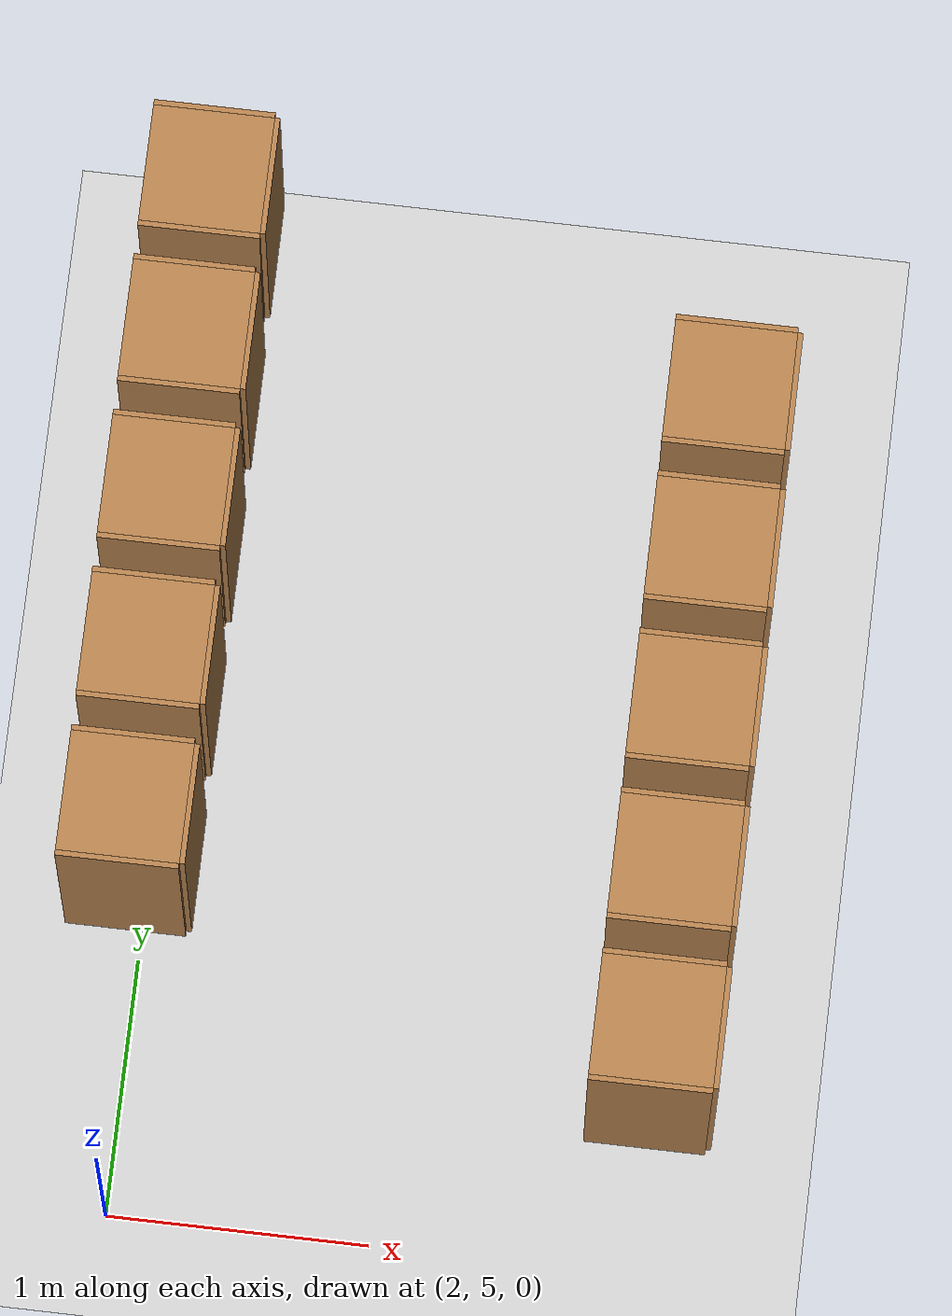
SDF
<sdf version="1.7">
 <world name="default">
  <model name="ground_plane">
   <static>1</static>
   <link name="link">
    <collision name="collision">
     <geometry><plane><normal>0 0 1</normal><size>100 100</size></plane></geometry>
     <surface><friction><ode><mu>100</mu><mu2>50</mu2></ode></friction></surface>
    </collision>
    <visual name="visual">
     <cast_shadows>0</cast_shadows>
     <geometry><plane><normal>0 0 1</normal><size>100 100</size></plane></geometry>
     <material>
      <script><uri>file://media/materials/scripts/gazebo.material</uri><name>Gazebo/Grey</name></script>
     </material>
    </visual>
   </link>
  </model>
  <model name="cabinet_1">
   <static>1</static>
   <link name="cabinet_bottom_plate">
    <inertial>
     <pose>0 0 -1 0 -0 0</pose>
     <inertia><ixx>2.05</ixx><ixy>0</ixy><ixz>0</ixz><iyy>2.05</iyy><iyz>0</iyz><izz>2.05</izz></inertia>
     <mass>25</mass>
    </inertial>
    <collision name="cabinet_bottom_plate_geom">
     <pose>0 0 0.01 0 -0 0</pose>
     <geometry><box><size>0.45 0.45 0.02</size></box></geometry>
    </collision>
    <visual name="cabinet_bottom_plate_geom_visual">
     <pose>0 0 0.01 0 -0 0</pose>
     <geometry><box><size>0.45 0.45 0.02</size></box></geometry>
     <material>
      <script><uri>file://media/materials/scripts/gazebo.material</uri><name>Gazebo/Wood</name></script>
     </material>
    </visual>
    <collision name="cabinet_bottom_plate_geom_cabinet_back_plate">
     <pose>0.235 0 0.51 0 -0 0</pose>
     <geometry><box><size>0.02 0.45 1.02</size></box></geometry>
    </collision>
    <visual name="cabinet_bottom_plate_geom_cabinet_back_plate_visual">
     <pose>0.235 0 0.51 0 -0 0</pose>
     <geometry><box><size>0.02 0.45 1.02</size></box></geometry>
     <material>
      <script><uri>file://media/materials/scripts/gazebo.material</uri><name>Gazebo/Wood</name></script>
     </material>
    </visual>
    <collision name="cabinet_bottom_plate_geom_cabinet_left_plate">
     <pose>0 0.235 0.51 0 -0 0</pose>
     <geometry><box><size>0.45 0.02 1.02</size></box></geometry>
    </collision>
    <visual name="cabinet_bottom_plate_geom_cabinet_left_plate_visual">
     <pose>0 0.235 0.51 0 -0 0</pose>
     <geometry><box><size>0.45 0.02 1.02</size></box></geometry>
     <material>
      <script><uri>file://media/materials/scripts/gazebo.material</uri><name>Gazebo/Wood</name></script>
     </material>
    </visual>
    <collision name="cabinet_bottom_plate_geom_cabinet_middle_plate">
     <pose>0 0 0.51 0 -0 0</pose>
     <geometry><box><size>0.45 0.45 0.02</size></box></geometry>
    </collision>
    <visual name="cabinet_bottom_plate_geom_cabinet_middle_plate_visual">
     <pose>0 0 0.51 0 -0 0</pose>
     <geometry><box><size>0.45 0.45 0.02</size></box></geometry>
     <material>
      <script><uri>file://media/materials/scripts/gazebo.material</uri><name>Gazebo/Wood</name></script>
     </material>
    </visual>
    <collision name="cabinet_bottom_plate_geom_cabinet_right_plate">
     <pose>0 -0.235 0.51 0 -0 0</pose>
     <geometry><box><size>0.45 0.02 1.02</size></box></geometry>
    </collision>
    <visual name="cabinet_bottom_plate_geom_cabinet_right_plate_visual">
     <pose>0 -0.235 0.51 0 -0 0</pose>
     <geometry><box><size>0.45 0.02 1.02</size></box></geometry>
     <material>
      <script><uri>file://media/materials/scripts/gazebo.material</uri><name>Gazebo/Wood</name></script>
     </material>
    </visual>
    <collision name="cabinet_bottom_plate_geom_cabinet_top_plate">
     <pose>0 0 1.01 0 -0 0</pose>
     <geometry><box><size>0.45 0.45 0.02</size></box></geometry>
    </collision>
    <visual name="cabinet_bottom_plate_geom_cabinet_top_plate_visual">
     <pose>0 0 1.01 0 -0 0</pose>
     <geometry><box><size>0.45 0.45 0.02</size></box></geometry>
     <material>
      <script><uri>file://media/materials/scripts/gazebo.material</uri><name>Gazebo/Wood</name></script>
     </material>
    </visual>
   </link>
   <pose>4 6.1 0 0 -0 0</pose>
  </model>
  <model name="cabinet_2">
   <static>1</static>
   <link name="cabinet_bottom_plate">
    <inertial>
     <pose>0 0 -1 0 -0 0</pose>
     <inertia><ixx>2.05</ixx><ixy>0</ixy><ixz>0</ixz><iyy>2.05</iyy><iyz>0</iyz><izz>2.05</izz></inertia>
     <mass>25</mass>
    </inertial>
    <collision name="cabinet_bottom_plate_geom">
     <pose>0 0 0.01 0 -0 0</pose>
     <geometry><box><size>0.45 0.45 0.02</size></box></geometry>
    </collision>
    <visual name="cabinet_bottom_plate_geom_visual">
     <pose>0 0 0.01 0 -0 0</pose>
     <geometry><box><size>0.45 0.45 0.02</size></box></geometry>
     <material>
      <script><uri>file://media/materials/scripts/gazebo.material</uri><name>Gazebo/Wood</name></script>
     </material>
    </visual>
    <collision name="cabinet_bottom_plate_geom_cabinet_back_plate">
     <pose>0.235 0 0.51 0 -0 0</pose>
     <geometry><box><size>0.02 0.45 1.02</size></box></geometry>
    </collision>
    <visual name="cabinet_bottom_plate_geom_cabinet_back_plate_visual">
     <pose>0.235 0 0.51 0 -0 0</pose>
     <geometry><box><size>0.02 0.45 1.02</size></box></geometry>
     <material>
      <script><uri>file://media/materials/scripts/gazebo.material</uri><name>Gazebo/Wood</name></script>
     </material>
    </visual>
    <collision name="cabinet_bottom_plate_geom_cabinet_left_plate">
     <pose>0 0.235 0.51 0 -0 0</pose>
     <geometry><box><size>0.45 0.02 1.02</size></box></geometry>
    </collision>
    <visual name="cabinet_bottom_plate_geom_cabinet_left_plate_visual">
     <pose>0 0.235 0.51 0 -0 0</pose>
     <geometry><box><size>0.45 0.02 1.02</size></box></geometry>
     <material>
      <script><uri>file://media/materials/scripts/gazebo.material</uri><name>Gazebo/Wood</name></script>
     </material>
    </visual>
    <collision name="cabinet_bottom_plate_geom_cabinet_middle_plate">
     <pose>0 0 0.51 0 -0 0</pose>
     <geometry><box><size>0.45 0.45 0.02</size></box></geometry>
    </collision>
    <visual name="cabinet_bottom_plate_geom_cabinet_middle_plate_visual">
     <pose>0 0 0.51 0 -0 0</pose>
     <geometry><box><size>0.45 0.45 0.02</size></box></geometry>
     <material>
      <script><uri>file://media/materials/scripts/gazebo.material</uri><name>Gazebo/Wood</name></script>
     </material>
    </visual>
    <collision name="cabinet_bottom_plate_geom_cabinet_right_plate">
     <pose>0 -0.235 0.51 0 -0 0</pose>
     <geometry><box><size>0.45 0.02 1.02</size></box></geometry>
    </collision>
    <visual name="cabinet_bottom_plate_geom_cabinet_right_plate_visual">
     <pose>0 -0.235 0.51 0 -0 0</pose>
     <geometry><box><size>0.45 0.02 1.02</size></box></geometry>
     <material>
      <script><uri>file://media/materials/scripts/gazebo.material</uri><name>Gazebo/Wood</name></script>
     </material>
    </visual>
    <collision name="cabinet_bottom_plate_geom_cabinet_top_plate">
     <pose>0 0 1.01 0 -0 0</pose>
     <geometry><box><size>0.45 0.45 0.02</size></box></geometry>
    </collision>
    <visual name="cabinet_bottom_plate_geom_cabinet_top_plate_visual">
     <pose>0 0 1.01 0 -0 0</pose>
     <geometry><box><size>0.45 0.45 0.02</size></box></geometry>
     <material>
      <script><uri>file://media/materials/scripts/gazebo.material</uri><name>Gazebo/Wood</name></script>
     </material>
    </visual>
   </link>
   <pose>4 6.7 0 0 -0 0</pose>
  </model>
  <model name="cabinet_3">
   <static>1</static>
   <link name="cabinet_bottom_plate">
    <inertial>
     <pose>0 0 -1 0 -0 0</pose>
     <inertia><ixx>2.05</ixx><ixy>0</ixy><ixz>0</ixz><iyy>2.05</iyy><iyz>0</iyz><izz>2.05</izz></inertia>
     <mass>25</mass>
    </inertial>
    <collision name="cabinet_bottom_plate_geom">
     <pose>0 0 0.01 0 -0 0</pose>
     <geometry><box><size>0.45 0.45 0.02</size></box></geometry>
    </collision>
    <visual name="cabinet_bottom_plate_geom_visual">
     <pose>0 0 0.01 0 -0 0</pose>
     <geometry><box><size>0.45 0.45 0.02</size></box></geometry>
     <material>
      <script><uri>file://media/materials/scripts/gazebo.material</uri><name>Gazebo/Wood</name></script>
     </material>
    </visual>
    <collision name="cabinet_bottom_plate_geom_cabinet_back_plate">
     <pose>0.235 0 0.51 0 -0 0</pose>
     <geometry><box><size>0.02 0.45 1.02</size></box></geometry>
    </collision>
    <visual name="cabinet_bottom_plate_geom_cabinet_back_plate_visual">
     <pose>0.235 0 0.51 0 -0 0</pose>
     <geometry><box><size>0.02 0.45 1.02</size></box></geometry>
     <material>
      <script><uri>file://media/materials/scripts/gazebo.material</uri><name>Gazebo/Wood</name></script>
     </material>
    </visual>
    <collision name="cabinet_bottom_plate_geom_cabinet_left_plate">
     <pose>0 0.235 0.51 0 -0 0</pose>
     <geometry><box><size>0.45 0.02 1.02</size></box></geometry>
    </collision>
    <visual name="cabinet_bottom_plate_geom_cabinet_left_plate_visual">
     <pose>0 0.235 0.51 0 -0 0</pose>
     <geometry><box><size>0.45 0.02 1.02</size></box></geometry>
     <material>
      <script><uri>file://media/materials/scripts/gazebo.material</uri><name>Gazebo/Wood</name></script>
     </material>
    </visual>
    <collision name="cabinet_bottom_plate_geom_cabinet_middle_plate">
     <pose>0 0 0.51 0 -0 0</pose>
     <geometry><box><size>0.45 0.45 0.02</size></box></geometry>
    </collision>
    <visual name="cabinet_bottom_plate_geom_cabinet_middle_plate_visual">
     <pose>0 0 0.51 0 -0 0</pose>
     <geometry><box><size>0.45 0.45 0.02</size></box></geometry>
     <material>
      <script><uri>file://media/materials/scripts/gazebo.material</uri><name>Gazebo/Wood</name></script>
     </material>
    </visual>
    <collision name="cabinet_bottom_plate_geom_cabinet_right_plate">
     <pose>0 -0.235 0.51 0 -0 0</pose>
     <geometry><box><size>0.45 0.02 1.02</size></box></geometry>
    </collision>
    <visual name="cabinet_bottom_plate_geom_cabinet_right_plate_visual">
     <pose>0 -0.235 0.51 0 -0 0</pose>
     <geometry><box><size>0.45 0.02 1.02</size></box></geometry>
     <material>
      <script><uri>file://media/materials/scripts/gazebo.material</uri><name>Gazebo/Wood</name></script>
     </material>
    </visual>
    <collision name="cabinet_bottom_plate_geom_cabinet_top_plate">
     <pose>0 0 1.01 0 -0 0</pose>
     <geometry><box><size>0.45 0.45 0.02</size></box></geometry>
    </collision>
    <visual name="cabinet_bottom_plate_geom_cabinet_top_plate_visual">
     <pose>0 0 1.01 0 -0 0</pose>
     <geometry><box><size>0.45 0.45 0.02</size></box></geometry>
     <material>
      <script><uri>file://media/materials/scripts/gazebo.material</uri><name>Gazebo/Wood</name></script>
     </material>
    </visual>
   </link>
   <pose>4 7.3 0 0 -0 0</pose>
  </model>
  <model name="cabinet_16">
   <static>1</static>
   <link name="cabinet_bottom_plate">
    <inertial>
     <pose>0 0 -1 0 -0 0</pose>
     <inertia><ixx>2.05</ixx><ixy>0</ixy><ixz>0</ixz><iyy>2.05</iyy><iyz>0</iyz><izz>2.05</izz></inertia>
     <mass>25</mass>
    </inertial>
    <collision name="cabinet_bottom_plate_geom">
     <pose>0 0 0.01 0 -0 0</pose>
     <geometry><box><size>0.45 0.45 0.02</size></box></geometry>
    </collision>
    <visual name="cabinet_bottom_plate_geom_visual">
     <pose>0 0 0.01 0 -0 0</pose>
     <geometry><box><size>0.45 0.45 0.02</size></box></geometry>
     <material>
      <script><uri>file://media/materials/scripts/gazebo.material</uri><name>Gazebo/Wood</name></script>
     </material>
    </visual>
    <collision name="cabinet_bottom_plate_geom_cabinet_back_plate">
     <pose>0.235 0 0.51 0 -0 0</pose>
     <geometry><box><size>0.02 0.45 1.02</size></box></geometry>
    </collision>
    <visual name="cabinet_bottom_plate_geom_cabinet_back_plate_visual">
     <pose>0.235 0 0.51 0 -0 0</pose>
     <geometry><box><size>0.02 0.45 1.02</size></box></geometry>
     <material>
      <script><uri>file://media/materials/scripts/gazebo.material</uri><name>Gazebo/Wood</name></script>
     </material>
    </visual>
    <collision name="cabinet_bottom_plate_geom_cabinet_left_plate">
     <pose>0 0.235 0.51 0 -0 0</pose>
     <geometry><box><size>0.45 0.02 1.02</size></box></geometry>
    </collision>
    <visual name="cabinet_bottom_plate_geom_cabinet_left_plate_visual">
     <pose>0 0.235 0.51 0 -0 0</pose>
     <geometry><box><size>0.45 0.02 1.02</size></box></geometry>
     <material>
      <script><uri>file://media/materials/scripts/gazebo.material</uri><name>Gazebo/Wood</name></script>
     </material>
    </visual>
    <collision name="cabinet_bottom_plate_geom_cabinet_middle_plate">
     <pose>0 0 0.51 0 -0 0</pose>
     <geometry><box><size>0.45 0.45 0.02</size></box></geometry>
    </collision>
    <visual name="cabinet_bottom_plate_geom_cabinet_middle_plate_visual">
     <pose>0 0 0.51 0 -0 0</pose>
     <geometry><box><size>0.45 0.45 0.02</size></box></geometry>
     <material>
      <script><uri>file://media/materials/scripts/gazebo.material</uri><name>Gazebo/Wood</name></script>
     </material>
    </visual>
    <collision name="cabinet_bottom_plate_geom_cabinet_right_plate">
     <pose>0 -0.235 0.51 0 -0 0</pose>
     <geometry><box><size>0.45 0.02 1.02</size></box></geometry>
    </collision>
    <visual name="cabinet_bottom_plate_geom_cabinet_right_plate_visual">
     <pose>0 -0.235 0.51 0 -0 0</pose>
     <geometry><box><size>0.45 0.02 1.02</size></box></geometry>
     <material>
      <script><uri>file://media/materials/scripts/gazebo.material</uri><name>Gazebo/Wood</name></script>
     </material>
    </visual>
    <collision name="cabinet_bottom_plate_geom_cabinet_top_plate">
     <pose>0 0 1.01 0 -0 0</pose>
     <geometry><box><size>0.45 0.45 0.02</size></box></geometry>
    </collision>
    <visual name="cabinet_bottom_plate_geom_cabinet_top_plate_visual">
     <pose>0 0 1.01 0 -0 0</pose>
     <geometry><box><size>0.45 0.45 0.02</size></box></geometry>
     <material>
      <script><uri>file://media/materials/scripts/gazebo.material</uri><name>Gazebo/Wood</name></script>
     </material>
    </visual>
   </link>
   <pose>4 7.9 0 0 -0 0</pose>
  </model>
  <model name="cabinet_69">
   <static>1</static>
   <link name="cabinet_bottom_plate">
    <inertial>
     <pose>0 0 -1 0 -0 0</pose>
     <inertia><ixx>2.05</ixx><ixy>0</ixy><ixz>0</ixz><iyy>2.05</iyy><iyz>0</iyz><izz>2.05</izz></inertia>
     <mass>25</mass>
    </inertial>
    <collision name="cabinet_bottom_plate_geom">
     <pose>0 0 0.01 0 -0 0</pose>
     <geometry><box><size>0.45 0.45 0.02</size></box></geometry>
    </collision>
    <visual name="cabinet_bottom_plate_geom_visual">
     <pose>0 0 0.01 0 -0 0</pose>
     <geometry><box><size>0.45 0.45 0.02</size></box></geometry>
     <material>
      <script><uri>file://media/materials/scripts/gazebo.material</uri><name>Gazebo/Wood</name></script>
     </material>
    </visual>
    <collision name="cabinet_bottom_plate_geom_cabinet_back_plate">
     <pose>0.235 0 0.51 0 -0 0</pose>
     <geometry><box><size>0.02 0.45 1.02</size></box></geometry>
    </collision>
    <visual name="cabinet_bottom_plate_geom_cabinet_back_plate_visual">
     <pose>0.235 0 0.51 0 -0 0</pose>
     <geometry><box><size>0.02 0.45 1.02</size></box></geometry>
     <material>
      <script><uri>file://media/materials/scripts/gazebo.material</uri><name>Gazebo/Wood</name></script>
     </material>
    </visual>
    <collision name="cabinet_bottom_plate_geom_cabinet_left_plate">
     <pose>0 0.235 0.51 0 -0 0</pose>
     <geometry><box><size>0.45 0.02 1.02</size></box></geometry>
    </collision>
    <visual name="cabinet_bottom_plate_geom_cabinet_left_plate_visual">
     <pose>0 0.235 0.51 0 -0 0</pose>
     <geometry><box><size>0.45 0.02 1.02</size></box></geometry>
     <material>
      <script><uri>file://media/materials/scripts/gazebo.material</uri><name>Gazebo/Wood</name></script>
     </material>
    </visual>
    <collision name="cabinet_bottom_plate_geom_cabinet_middle_plate">
     <pose>0 0 0.51 0 -0 0</pose>
     <geometry><box><size>0.45 0.45 0.02</size></box></geometry>
    </collision>
    <visual name="cabinet_bottom_plate_geom_cabinet_middle_plate_visual">
     <pose>0 0 0.51 0 -0 0</pose>
     <geometry><box><size>0.45 0.45 0.02</size></box></geometry>
     <material>
      <script><uri>file://media/materials/scripts/gazebo.material</uri><name>Gazebo/Wood</name></script>
     </material>
    </visual>
    <collision name="cabinet_bottom_plate_geom_cabinet_right_plate">
     <pose>0 -0.235 0.51 0 -0 0</pose>
     <geometry><box><size>0.45 0.02 1.02</size></box></geometry>
    </collision>
    <visual name="cabinet_bottom_plate_geom_cabinet_right_plate_visual">
     <pose>0 -0.235 0.51 0 -0 0</pose>
     <geometry><box><size>0.45 0.02 1.02</size></box></geometry>
     <material>
      <script><uri>file://media/materials/scripts/gazebo.material</uri><name>Gazebo/Wood</name></script>
     </material>
    </visual>
    <collision name="cabinet_bottom_plate_geom_cabinet_top_plate">
     <pose>0 0 1.01 0 -0 0</pose>
     <geometry><box><size>0.45 0.45 0.02</size></box></geometry>
    </collision>
    <visual name="cabinet_bottom_plate_geom_cabinet_top_plate_visual">
     <pose>0 0 1.01 0 -0 0</pose>
     <geometry><box><size>0.45 0.45 0.02</size></box></geometry>
     <material>
      <script><uri>file://media/materials/scripts/gazebo.material</uri><name>Gazebo/Wood</name></script>
     </material>
    </visual>
   </link>
   <pose>4 6.1 1.1 0 -0 0</pose>
  </model>
  <model name="cabinet_85">
   <static>1</static>
   <link name="cabinet_bottom_plate">
    <inertial>
     <pose>0 0 -1 0 -0 0</pose>
     <inertia><ixx>2.05</ixx><ixy>0</ixy><ixz>0</ixz><iyy>2.05</iyy><iyz>0</iyz><izz>2.05</izz></inertia>
     <mass>25</mass>
    </inertial>
    <collision name="cabinet_bottom_plate_geom">
     <pose>0 0 0.01 0 -0 0</pose>
     <geometry><box><size>0.45 0.45 0.02</size></box></geometry>
    </collision>
    <visual name="cabinet_bottom_plate_geom_visual">
     <pose>0 0 0.01 0 -0 0</pose>
     <geometry><box><size>0.45 0.45 0.02</size></box></geometry>
     <material>
      <script><uri>file://media/materials/scripts/gazebo.material</uri><name>Gazebo/Wood</name></script>
     </material>
    </visual>
    <collision name="cabinet_bottom_plate_geom_cabinet_back_plate">
     <pose>0.235 0 0.51 0 -0 0</pose>
     <geometry><box><size>0.02 0.45 1.02</size></box></geometry>
    </collision>
    <visual name="cabinet_bottom_plate_geom_cabinet_back_plate_visual">
     <pose>0.235 0 0.51 0 -0 0</pose>
     <geometry><box><size>0.02 0.45 1.02</size></box></geometry>
     <material>
      <script><uri>file://media/materials/scripts/gazebo.material</uri><name>Gazebo/Wood</name></script>
     </material>
    </visual>
    <collision name="cabinet_bottom_plate_geom_cabinet_left_plate">
     <pose>0 0.235 0.51 0 -0 0</pose>
     <geometry><box><size>0.45 0.02 1.02</size></box></geometry>
    </collision>
    <visual name="cabinet_bottom_plate_geom_cabinet_left_plate_visual">
     <pose>0 0.235 0.51 0 -0 0</pose>
     <geometry><box><size>0.45 0.02 1.02</size></box></geometry>
     <material>
      <script><uri>file://media/materials/scripts/gazebo.material</uri><name>Gazebo/Wood</name></script>
     </material>
    </visual>
    <collision name="cabinet_bottom_plate_geom_cabinet_middle_plate">
     <pose>0 0 0.51 0 -0 0</pose>
     <geometry><box><size>0.45 0.45 0.02</size></box></geometry>
    </collision>
    <visual name="cabinet_bottom_plate_geom_cabinet_middle_plate_visual">
     <pose>0 0 0.51 0 -0 0</pose>
     <geometry><box><size>0.45 0.45 0.02</size></box></geometry>
     <material>
      <script><uri>file://media/materials/scripts/gazebo.material</uri><name>Gazebo/Wood</name></script>
     </material>
    </visual>
    <collision name="cabinet_bottom_plate_geom_cabinet_right_plate">
     <pose>0 -0.235 0.51 0 -0 0</pose>
     <geometry><box><size>0.45 0.02 1.02</size></box></geometry>
    </collision>
    <visual name="cabinet_bottom_plate_geom_cabinet_right_plate_visual">
     <pose>0 -0.235 0.51 0 -0 0</pose>
     <geometry><box><size>0.45 0.02 1.02</size></box></geometry>
     <material>
      <script><uri>file://media/materials/scripts/gazebo.material</uri><name>Gazebo/Wood</name></script>
     </material>
    </visual>
    <collision name="cabinet_bottom_plate_geom_cabinet_top_plate">
     <pose>0 0 1.01 0 -0 0</pose>
     <geometry><box><size>0.45 0.45 0.02</size></box></geometry>
    </collision>
    <visual name="cabinet_bottom_plate_geom_cabinet_top_plate_visual">
     <pose>0 0 1.01 0 -0 0</pose>
     <geometry><box><size>0.45 0.45 0.02</size></box></geometry>
     <material>
      <script><uri>file://media/materials/scripts/gazebo.material</uri><name>Gazebo/Wood</name></script>
     </material>
    </visual>
   </link>
   <pose>4 5.5 1.1 0 -0 0</pose>
  </model>
  <model name="cabinet_87">
   <static>1</static>
   <link name="cabinet_bottom_plate">
    <inertial>
     <pose>0 0 -1 0 -0 0</pose>
     <inertia><ixx>2.05</ixx><ixy>0</ixy><ixz>0</ixz><iyy>2.05</iyy><iyz>0</iyz><izz>2.05</izz></inertia>
     <mass>25</mass>
    </inertial>
    <collision name="cabinet_bottom_plate_geom">
     <pose>0 0 0.01 0 -0 0</pose>
     <geometry><box><size>0.45 0.45 0.02</size></box></geometry>
    </collision>
    <visual name="cabinet_bottom_plate_geom_visual">
     <pose>0 0 0.01 0 -0 0</pose>
     <geometry><box><size>0.45 0.45 0.02</size></box></geometry>
     <material>
      <script><uri>file://media/materials/scripts/gazebo.material</uri><name>Gazebo/Wood</name></script>
     </material>
    </visual>
    <collision name="cabinet_bottom_plate_geom_cabinet_back_plate">
     <pose>0.235 0 0.51 0 -0 0</pose>
     <geometry><box><size>0.02 0.45 1.02</size></box></geometry>
    </collision>
    <visual name="cabinet_bottom_plate_geom_cabinet_back_plate_visual">
     <pose>0.235 0 0.51 0 -0 0</pose>
     <geometry><box><size>0.02 0.45 1.02</size></box></geometry>
     <material>
      <script><uri>file://media/materials/scripts/gazebo.material</uri><name>Gazebo/Wood</name></script>
     </material>
    </visual>
    <collision name="cabinet_bottom_plate_geom_cabinet_left_plate">
     <pose>0 0.235 0.51 0 -0 0</pose>
     <geometry><box><size>0.45 0.02 1.02</size></box></geometry>
    </collision>
    <visual name="cabinet_bottom_plate_geom_cabinet_left_plate_visual">
     <pose>0 0.235 0.51 0 -0 0</pose>
     <geometry><box><size>0.45 0.02 1.02</size></box></geometry>
     <material>
      <script><uri>file://media/materials/scripts/gazebo.material</uri><name>Gazebo/Wood</name></script>
     </material>
    </visual>
    <collision name="cabinet_bottom_plate_geom_cabinet_middle_plate">
     <pose>0 0 0.51 0 -0 0</pose>
     <geometry><box><size>0.45 0.45 0.02</size></box></geometry>
    </collision>
    <visual name="cabinet_bottom_plate_geom_cabinet_middle_plate_visual">
     <pose>0 0 0.51 0 -0 0</pose>
     <geometry><box><size>0.45 0.45 0.02</size></box></geometry>
     <material>
      <script><uri>file://media/materials/scripts/gazebo.material</uri><name>Gazebo/Wood</name></script>
     </material>
    </visual>
    <collision name="cabinet_bottom_plate_geom_cabinet_right_plate">
     <pose>0 -0.235 0.51 0 -0 0</pose>
     <geometry><box><size>0.45 0.02 1.02</size></box></geometry>
    </collision>
    <visual name="cabinet_bottom_plate_geom_cabinet_right_plate_visual">
     <pose>0 -0.235 0.51 0 -0 0</pose>
     <geometry><box><size>0.45 0.02 1.02</size></box></geometry>
     <material>
      <script><uri>file://media/materials/scripts/gazebo.material</uri><name>Gazebo/Wood</name></script>
     </material>
    </visual>
    <collision name="cabinet_bottom_plate_geom_cabinet_top_plate">
     <pose>0 0 1.01 0 -0 0</pose>
     <geometry><box><size>0.45 0.45 0.02</size></box></geometry>
    </collision>
    <visual name="cabinet_bottom_plate_geom_cabinet_top_plate_visual">
     <pose>0 0 1.01 0 -0 0</pose>
     <geometry><box><size>0.45 0.45 0.02</size></box></geometry>
     <material>
      <script><uri>file://media/materials/scripts/gazebo.material</uri><name>Gazebo/Wood</name></script>
     </material>
    </visual>
   </link>
   <pose>4 6.7 1.1 0 -0 0</pose>
  </model>
  <model name="cabinet_88">
   <static>1</static>
   <link name="cabinet_bottom_plate">
    <inertial>
     <pose>0 0 -1 0 -0 0</pose>
     <inertia><ixx>2.05</ixx><ixy>0</ixy><ixz>0</ixz><iyy>2.05</iyy><iyz>0</iyz><izz>2.05</izz></inertia>
     <mass>25</mass>
    </inertial>
    <collision name="cabinet_bottom_plate_geom">
     <pose>0 0 0.01 0 -0 0</pose>
     <geometry><box><size>0.45 0.45 0.02</size></box></geometry>
    </collision>
    <visual name="cabinet_bottom_plate_geom_visual">
     <pose>0 0 0.01 0 -0 0</pose>
     <geometry><box><size>0.45 0.45 0.02</size></box></geometry>
     <material>
      <script><uri>file://media/materials/scripts/gazebo.material</uri><name>Gazebo/Wood</name></script>
     </material>
    </visual>
    <collision name="cabinet_bottom_plate_geom_cabinet_back_plate">
     <pose>0.235 0 0.51 0 -0 0</pose>
     <geometry><box><size>0.02 0.45 1.02</size></box></geometry>
    </collision>
    <visual name="cabinet_bottom_plate_geom_cabinet_back_plate_visual">
     <pose>0.235 0 0.51 0 -0 0</pose>
     <geometry><box><size>0.02 0.45 1.02</size></box></geometry>
     <material>
      <script><uri>file://media/materials/scripts/gazebo.material</uri><name>Gazebo/Wood</name></script>
     </material>
    </visual>
    <collision name="cabinet_bottom_plate_geom_cabinet_left_plate">
     <pose>0 0.235 0.51 0 -0 0</pose>
     <geometry><box><size>0.45 0.02 1.02</size></box></geometry>
    </collision>
    <visual name="cabinet_bottom_plate_geom_cabinet_left_plate_visual">
     <pose>0 0.235 0.51 0 -0 0</pose>
     <geometry><box><size>0.45 0.02 1.02</size></box></geometry>
     <material>
      <script><uri>file://media/materials/scripts/gazebo.material</uri><name>Gazebo/Wood</name></script>
     </material>
    </visual>
    <collision name="cabinet_bottom_plate_geom_cabinet_middle_plate">
     <pose>0 0 0.51 0 -0 0</pose>
     <geometry><box><size>0.45 0.45 0.02</size></box></geometry>
    </collision>
    <visual name="cabinet_bottom_plate_geom_cabinet_middle_plate_visual">
     <pose>0 0 0.51 0 -0 0</pose>
     <geometry><box><size>0.45 0.45 0.02</size></box></geometry>
     <material>
      <script><uri>file://media/materials/scripts/gazebo.material</uri><name>Gazebo/Wood</name></script>
     </material>
    </visual>
    <collision name="cabinet_bottom_plate_geom_cabinet_right_plate">
     <pose>0 -0.235 0.51 0 -0 0</pose>
     <geometry><box><size>0.45 0.02 1.02</size></box></geometry>
    </collision>
    <visual name="cabinet_bottom_plate_geom_cabinet_right_plate_visual">
     <pose>0 -0.235 0.51 0 -0 0</pose>
     <geometry><box><size>0.45 0.02 1.02</size></box></geometry>
     <material>
      <script><uri>file://media/materials/scripts/gazebo.material</uri><name>Gazebo/Wood</name></script>
     </material>
    </visual>
    <collision name="cabinet_bottom_plate_geom_cabinet_top_plate">
     <pose>0 0 1.01 0 -0 0</pose>
     <geometry><box><size>0.45 0.45 0.02</size></box></geometry>
    </collision>
    <visual name="cabinet_bottom_plate_geom_cabinet_top_plate_visual">
     <pose>0 0 1.01 0 -0 0</pose>
     <geometry><box><size>0.45 0.45 0.02</size></box></geometry>
     <material>
      <script><uri>file://media/materials/scripts/gazebo.material</uri><name>Gazebo/Wood</name></script>
     </material>
    </visual>
   </link>
   <pose>4 7.3 1.1 0 -0 0</pose>
  </model>
  <model name="cabinet_89">
   <static>1</static>
   <link name="cabinet_bottom_plate">
    <inertial>
     <pose>0 0 -1 0 -0 0</pose>
     <inertia><ixx>2.05</ixx><ixy>0</ixy><ixz>0</ixz><iyy>2.05</iyy><iyz>0</iyz><izz>2.05</izz></inertia>
     <mass>25</mass>
    </inertial>
    <collision name="cabinet_bottom_plate_geom">
     <pose>0 0 0.01 0 -0 0</pose>
     <geometry><box><size>0.45 0.45 0.02</size></box></geometry>
    </collision>
    <visual name="cabinet_bottom_plate_geom_visual">
     <pose>0 0 0.01 0 -0 0</pose>
     <geometry><box><size>0.45 0.45 0.02</size></box></geometry>
     <material>
      <script><uri>file://media/materials/scripts/gazebo.material</uri><name>Gazebo/Wood</name></script>
     </material>
    </visual>
    <collision name="cabinet_bottom_plate_geom_cabinet_back_plate">
     <pose>0.235 0 0.51 0 -0 0</pose>
     <geometry><box><size>0.02 0.45 1.02</size></box></geometry>
    </collision>
    <visual name="cabinet_bottom_plate_geom_cabinet_back_plate_visual">
     <pose>0.235 0 0.51 0 -0 0</pose>
     <geometry><box><size>0.02 0.45 1.02</size></box></geometry>
     <material>
      <script><uri>file://media/materials/scripts/gazebo.material</uri><name>Gazebo/Wood</name></script>
     </material>
    </visual>
    <collision name="cabinet_bottom_plate_geom_cabinet_left_plate">
     <pose>0 0.235 0.51 0 -0 0</pose>
     <geometry><box><size>0.45 0.02 1.02</size></box></geometry>
    </collision>
    <visual name="cabinet_bottom_plate_geom_cabinet_left_plate_visual">
     <pose>0 0.235 0.51 0 -0 0</pose>
     <geometry><box><size>0.45 0.02 1.02</size></box></geometry>
     <material>
      <script><uri>file://media/materials/scripts/gazebo.material</uri><name>Gazebo/Wood</name></script>
     </material>
    </visual>
    <collision name="cabinet_bottom_plate_geom_cabinet_middle_plate">
     <pose>0 0 0.51 0 -0 0</pose>
     <geometry><box><size>0.45 0.45 0.02</size></box></geometry>
    </collision>
    <visual name="cabinet_bottom_plate_geom_cabinet_middle_plate_visual">
     <pose>0 0 0.51 0 -0 0</pose>
     <geometry><box><size>0.45 0.45 0.02</size></box></geometry>
     <material>
      <script><uri>file://media/materials/scripts/gazebo.material</uri><name>Gazebo/Wood</name></script>
     </material>
    </visual>
    <collision name="cabinet_bottom_plate_geom_cabinet_right_plate">
     <pose>0 -0.235 0.51 0 -0 0</pose>
     <geometry><box><size>0.45 0.02 1.02</size></box></geometry>
    </collision>
    <visual name="cabinet_bottom_plate_geom_cabinet_right_plate_visual">
     <pose>0 -0.235 0.51 0 -0 0</pose>
     <geometry><box><size>0.45 0.02 1.02</size></box></geometry>
     <material>
      <script><uri>file://media/materials/scripts/gazebo.material</uri><name>Gazebo/Wood</name></script>
     </material>
    </visual>
    <collision name="cabinet_bottom_plate_geom_cabinet_top_plate">
     <pose>0 0 1.01 0 -0 0</pose>
     <geometry><box><size>0.45 0.45 0.02</size></box></geometry>
    </collision>
    <visual name="cabinet_bottom_plate_geom_cabinet_top_plate_visual">
     <pose>0 0 1.01 0 -0 0</pose>
     <geometry><box><size>0.45 0.45 0.02</size></box></geometry>
     <material>
      <script><uri>file://media/materials/scripts/gazebo.material</uri><name>Gazebo/Wood</name></script>
     </material>
    </visual>
   </link>
   <pose>4 7.9 1.1 0 -0 0</pose>
  </model>
  <model name="cabinet_92">
   <static>1</static>
   <link name="cabinet_bottom_plate">
    <inertial>
     <pose>0 0 -1 0 -0 0</pose>
     <inertia><ixx>2.05</ixx><ixy>0</ixy><ixz>0</ixz><iyy>2.05</iyy><iyz>0</iyz><izz>2.05</izz></inertia>
     <mass>25</mass>
    </inertial>
    <collision name="cabinet_bottom_plate_geom">
     <pose>0 0 0.01 0 -0 0</pose>
     <geometry><box><size>0.45 0.45 0.02</size></box></geometry>
    </collision>
    <visual name="cabinet_bottom_plate_geom_visual">
     <pose>0 0 0.01 0 -0 0</pose>
     <geometry><box><size>0.45 0.45 0.02</size></box></geometry>
     <material>
      <script><uri>file://media/materials/scripts/gazebo.material</uri><name>Gazebo/Wood</name></script>
     </material>
    </visual>
    <collision name="cabinet_bottom_plate_geom_cabinet_back_plate">
     <pose>0.235 0 0.51 0 -0 0</pose>
     <geometry><box><size>0.02 0.45 1.02</size></box></geometry>
    </collision>
    <visual name="cabinet_bottom_plate_geom_cabinet_back_plate_visual">
     <pose>0.235 0 0.51 0 -0 0</pose>
     <geometry><box><size>0.02 0.45 1.02</size></box></geometry>
     <material>
      <script><uri>file://media/materials/scripts/gazebo.material</uri><name>Gazebo/Wood</name></script>
     </material>
    </visual>
    <collision name="cabinet_bottom_plate_geom_cabinet_left_plate">
     <pose>0 0.235 0.51 0 -0 0</pose>
     <geometry><box><size>0.45 0.02 1.02</size></box></geometry>
    </collision>
    <visual name="cabinet_bottom_plate_geom_cabinet_left_plate_visual">
     <pose>0 0.235 0.51 0 -0 0</pose>
     <geometry><box><size>0.45 0.02 1.02</size></box></geometry>
     <material>
      <script><uri>file://media/materials/scripts/gazebo.material</uri><name>Gazebo/Wood</name></script>
     </material>
    </visual>
    <collision name="cabinet_bottom_plate_geom_cabinet_middle_plate">
     <pose>0 0 0.51 0 -0 0</pose>
     <geometry><box><size>0.45 0.45 0.02</size></box></geometry>
    </collision>
    <visual name="cabinet_bottom_plate_geom_cabinet_middle_plate_visual">
     <pose>0 0 0.51 0 -0 0</pose>
     <geometry><box><size>0.45 0.45 0.02</size></box></geometry>
     <material>
      <script><uri>file://media/materials/scripts/gazebo.material</uri><name>Gazebo/Wood</name></script>
     </material>
    </visual>
    <collision name="cabinet_bottom_plate_geom_cabinet_right_plate">
     <pose>0 -0.235 0.51 0 -0 0</pose>
     <geometry><box><size>0.45 0.02 1.02</size></box></geometry>
    </collision>
    <visual name="cabinet_bottom_plate_geom_cabinet_right_plate_visual">
     <pose>0 -0.235 0.51 0 -0 0</pose>
     <geometry><box><size>0.45 0.02 1.02</size></box></geometry>
     <material>
      <script><uri>file://media/materials/scripts/gazebo.material</uri><name>Gazebo/Wood</name></script>
     </material>
    </visual>
    <collision name="cabinet_bottom_plate_geom_cabinet_top_plate">
     <pose>0 0 1.01 0 -0 0</pose>
     <geometry><box><size>0.45 0.45 0.02</size></box></geometry>
    </collision>
    <visual name="cabinet_bottom_plate_geom_cabinet_top_plate_visual">
     <pose>0 0 1.01 0 -0 0</pose>
     <geometry><box><size>0.45 0.45 0.02</size></box></geometry>
     <material>
      <script><uri>file://media/materials/scripts/gazebo.material</uri><name>Gazebo/Wood</name></script>
     </material>
    </visual>
   </link>
   <pose>2 8.5 1.1 0 -0 0</pose>
  </model>
  <model name="cabinet_93">
   <static>1</static>
   <link name="cabinet_bottom_plate">
    <inertial>
     <pose>0 0 -1 0 -0 0</pose>
     <inertia><ixx>2.05</ixx><ixy>0</ixy><ixz>0</ixz><iyy>2.05</iyy><iyz>0</iyz><izz>2.05</izz></inertia>
     <mass>25</mass>
    </inertial>
    <collision name="cabinet_bottom_plate_geom">
     <pose>0 0 0.01 0 -0 0</pose>
     <geometry><box><size>0.45 0.45 0.02</size></box></geometry>
    </collision>
    <visual name="cabinet_bottom_plate_geom_visual">
     <pose>0 0 0.01 0 -0 0</pose>
     <geometry><box><size>0.45 0.45 0.02</size></box></geometry>
     <material>
      <script><uri>file://media/materials/scripts/gazebo.material</uri><name>Gazebo/Wood</name></script>
     </material>
    </visual>
    <collision name="cabinet_bottom_plate_geom_cabinet_back_plate">
     <pose>0.235 0 0.51 0 -0 0</pose>
     <geometry><box><size>0.02 0.45 1.02</size></box></geometry>
    </collision>
    <visual name="cabinet_bottom_plate_geom_cabinet_back_plate_visual">
     <pose>0.235 0 0.51 0 -0 0</pose>
     <geometry><box><size>0.02 0.45 1.02</size></box></geometry>
     <material>
      <script><uri>file://media/materials/scripts/gazebo.material</uri><name>Gazebo/Wood</name></script>
     </material>
    </visual>
    <collision name="cabinet_bottom_plate_geom_cabinet_left_plate">
     <pose>0 0.235 0.51 0 -0 0</pose>
     <geometry><box><size>0.45 0.02 1.02</size></box></geometry>
    </collision>
    <visual name="cabinet_bottom_plate_geom_cabinet_left_plate_visual">
     <pose>0 0.235 0.51 0 -0 0</pose>
     <geometry><box><size>0.45 0.02 1.02</size></box></geometry>
     <material>
      <script><uri>file://media/materials/scripts/gazebo.material</uri><name>Gazebo/Wood</name></script>
     </material>
    </visual>
    <collision name="cabinet_bottom_plate_geom_cabinet_middle_plate">
     <pose>0 0 0.51 0 -0 0</pose>
     <geometry><box><size>0.45 0.45 0.02</size></box></geometry>
    </collision>
    <visual name="cabinet_bottom_plate_geom_cabinet_middle_plate_visual">
     <pose>0 0 0.51 0 -0 0</pose>
     <geometry><box><size>0.45 0.45 0.02</size></box></geometry>
     <material>
      <script><uri>file://media/materials/scripts/gazebo.material</uri><name>Gazebo/Wood</name></script>
     </material>
    </visual>
    <collision name="cabinet_bottom_plate_geom_cabinet_right_plate">
     <pose>0 -0.235 0.51 0 -0 0</pose>
     <geometry><box><size>0.45 0.02 1.02</size></box></geometry>
    </collision>
    <visual name="cabinet_bottom_plate_geom_cabinet_right_plate_visual">
     <pose>0 -0.235 0.51 0 -0 0</pose>
     <geometry><box><size>0.45 0.02 1.02</size></box></geometry>
     <material>
      <script><uri>file://media/materials/scripts/gazebo.material</uri><name>Gazebo/Wood</name></script>
     </material>
    </visual>
    <collision name="cabinet_bottom_plate_geom_cabinet_top_plate">
     <pose>0 0 1.01 0 -0 0</pose>
     <geometry><box><size>0.45 0.45 0.02</size></box></geometry>
    </collision>
    <visual name="cabinet_bottom_plate_geom_cabinet_top_plate_visual">
     <pose>0 0 1.01 0 -0 0</pose>
     <geometry><box><size>0.45 0.45 0.02</size></box></geometry>
     <material>
      <script><uri>file://media/materials/scripts/gazebo.material</uri><name>Gazebo/Wood</name></script>
     </material>
    </visual>
   </link>
   <pose>2 7.9 1.1 0 -0 0</pose>
  </model>
  <model name="cabinet_94">
   <static>1</static>
   <link name="cabinet_bottom_plate">
    <inertial>
     <pose>0 0 -1 0 -0 0</pose>
     <inertia><ixx>2.05</ixx><ixy>0</ixy><ixz>0</ixz><iyy>2.05</iyy><iyz>0</iyz><izz>2.05</izz></inertia>
     <mass>25</mass>
    </inertial>
    <collision name="cabinet_bottom_plate_geom">
     <pose>0 0 0.01 0 -0 0</pose>
     <geometry><box><size>0.45 0.45 0.02</size></box></geometry>
    </collision>
    <visual name="cabinet_bottom_plate_geom_visual">
     <pose>0 0 0.01 0 -0 0</pose>
     <geometry><box><size>0.45 0.45 0.02</size></box></geometry>
     <material>
      <script><uri>file://media/materials/scripts/gazebo.material</uri><name>Gazebo/Wood</name></script>
     </material>
    </visual>
    <collision name="cabinet_bottom_plate_geom_cabinet_back_plate">
     <pose>0.235 0 0.51 0 -0 0</pose>
     <geometry><box><size>0.02 0.45 1.02</size></box></geometry>
    </collision>
    <visual name="cabinet_bottom_plate_geom_cabinet_back_plate_visual">
     <pose>0.235 0 0.51 0 -0 0</pose>
     <geometry><box><size>0.02 0.45 1.02</size></box></geometry>
     <material>
      <script><uri>file://media/materials/scripts/gazebo.material</uri><name>Gazebo/Wood</name></script>
     </material>
    </visual>
    <collision name="cabinet_bottom_plate_geom_cabinet_left_plate">
     <pose>0 0.235 0.51 0 -0 0</pose>
     <geometry><box><size>0.45 0.02 1.02</size></box></geometry>
    </collision>
    <visual name="cabinet_bottom_plate_geom_cabinet_left_plate_visual">
     <pose>0 0.235 0.51 0 -0 0</pose>
     <geometry><box><size>0.45 0.02 1.02</size></box></geometry>
     <material>
      <script><uri>file://media/materials/scripts/gazebo.material</uri><name>Gazebo/Wood</name></script>
     </material>
    </visual>
    <collision name="cabinet_bottom_plate_geom_cabinet_middle_plate">
     <pose>0 0 0.51 0 -0 0</pose>
     <geometry><box><size>0.45 0.45 0.02</size></box></geometry>
    </collision>
    <visual name="cabinet_bottom_plate_geom_cabinet_middle_plate_visual">
     <pose>0 0 0.51 0 -0 0</pose>
     <geometry><box><size>0.45 0.45 0.02</size></box></geometry>
     <material>
      <script><uri>file://media/materials/scripts/gazebo.material</uri><name>Gazebo/Wood</name></script>
     </material>
    </visual>
    <collision name="cabinet_bottom_plate_geom_cabinet_right_plate">
     <pose>0 -0.235 0.51 0 -0 0</pose>
     <geometry><box><size>0.45 0.02 1.02</size></box></geometry>
    </collision>
    <visual name="cabinet_bottom_plate_geom_cabinet_right_plate_visual">
     <pose>0 -0.235 0.51 0 -0 0</pose>
     <geometry><box><size>0.45 0.02 1.02</size></box></geometry>
     <material>
      <script><uri>file://media/materials/scripts/gazebo.material</uri><name>Gazebo/Wood</name></script>
     </material>
    </visual>
    <collision name="cabinet_bottom_plate_geom_cabinet_top_plate">
     <pose>0 0 1.01 0 -0 0</pose>
     <geometry><box><size>0.45 0.45 0.02</size></box></geometry>
    </collision>
    <visual name="cabinet_bottom_plate_geom_cabinet_top_plate_visual">
     <pose>0 0 1.01 0 -0 0</pose>
     <geometry><box><size>0.45 0.45 0.02</size></box></geometry>
     <material>
      <script><uri>file://media/materials/scripts/gazebo.material</uri><name>Gazebo/Wood</name></script>
     </material>
    </visual>
   </link>
   <pose>2 7.3 1.1 0 -0 0</pose>
  </model>
  <model name="cabinet_95">
   <static>1</static>
   <link name="cabinet_bottom_plate">
    <inertial>
     <pose>0 0 -1 0 -0 0</pose>
     <inertia><ixx>2.05</ixx><ixy>0</ixy><ixz>0</ixz><iyy>2.05</iyy><iyz>0</iyz><izz>2.05</izz></inertia>
     <mass>25</mass>
    </inertial>
    <collision name="cabinet_bottom_plate_geom">
     <pose>0 0 0.01 0 -0 0</pose>
     <geometry><box><size>0.45 0.45 0.02</size></box></geometry>
    </collision>
    <visual name="cabinet_bottom_plate_geom_visual">
     <pose>0 0 0.01 0 -0 0</pose>
     <geometry><box><size>0.45 0.45 0.02</size></box></geometry>
     <material>
      <script><uri>file://media/materials/scripts/gazebo.material</uri><name>Gazebo/Wood</name></script>
     </material>
    </visual>
    <collision name="cabinet_bottom_plate_geom_cabinet_back_plate">
     <pose>0.235 0 0.51 0 -0 0</pose>
     <geometry><box><size>0.02 0.45 1.02</size></box></geometry>
    </collision>
    <visual name="cabinet_bottom_plate_geom_cabinet_back_plate_visual">
     <pose>0.235 0 0.51 0 -0 0</pose>
     <geometry><box><size>0.02 0.45 1.02</size></box></geometry>
     <material>
      <script><uri>file://media/materials/scripts/gazebo.material</uri><name>Gazebo/Wood</name></script>
     </material>
    </visual>
    <collision name="cabinet_bottom_plate_geom_cabinet_left_plate">
     <pose>0 0.235 0.51 0 -0 0</pose>
     <geometry><box><size>0.45 0.02 1.02</size></box></geometry>
    </collision>
    <visual name="cabinet_bottom_plate_geom_cabinet_left_plate_visual">
     <pose>0 0.235 0.51 0 -0 0</pose>
     <geometry><box><size>0.45 0.02 1.02</size></box></geometry>
     <material>
      <script><uri>file://media/materials/scripts/gazebo.material</uri><name>Gazebo/Wood</name></script>
     </material>
    </visual>
    <collision name="cabinet_bottom_plate_geom_cabinet_middle_plate">
     <pose>0 0 0.51 0 -0 0</pose>
     <geometry><box><size>0.45 0.45 0.02</size></box></geometry>
    </collision>
    <visual name="cabinet_bottom_plate_geom_cabinet_middle_plate_visual">
     <pose>0 0 0.51 0 -0 0</pose>
     <geometry><box><size>0.45 0.45 0.02</size></box></geometry>
     <material>
      <script><uri>file://media/materials/scripts/gazebo.material</uri><name>Gazebo/Wood</name></script>
     </material>
    </visual>
    <collision name="cabinet_bottom_plate_geom_cabinet_right_plate">
     <pose>0 -0.235 0.51 0 -0 0</pose>
     <geometry><box><size>0.45 0.02 1.02</size></box></geometry>
    </collision>
    <visual name="cabinet_bottom_plate_geom_cabinet_right_plate_visual">
     <pose>0 -0.235 0.51 0 -0 0</pose>
     <geometry><box><size>0.45 0.02 1.02</size></box></geometry>
     <material>
      <script><uri>file://media/materials/scripts/gazebo.material</uri><name>Gazebo/Wood</name></script>
     </material>
    </visual>
    <collision name="cabinet_bottom_plate_geom_cabinet_top_plate">
     <pose>0 0 1.01 0 -0 0</pose>
     <geometry><box><size>0.45 0.45 0.02</size></box></geometry>
    </collision>
    <visual name="cabinet_bottom_plate_geom_cabinet_top_plate_visual">
     <pose>0 0 1.01 0 -0 0</pose>
     <geometry><box><size>0.45 0.45 0.02</size></box></geometry>
     <material>
      <script><uri>file://media/materials/scripts/gazebo.material</uri><name>Gazebo/Wood</name></script>
     </material>
    </visual>
   </link>
   <pose>2 6.7 1.1 0 -0 0</pose>
  </model>
  <model name="cabinet_98">
   <static>1</static>
   <link name="cabinet_bottom_plate">
    <inertial>
     <pose>0 0 -1 0 -0 0</pose>
     <inertia><ixx>2.05</ixx><ixy>0</ixy><ixz>0</ixz><iyy>2.05</iyy><iyz>0</iyz><izz>2.05</izz></inertia>
     <mass>25</mass>
    </inertial>
    <collision name="cabinet_bottom_plate_geom">
     <pose>0 0 0.01 0 -0 0</pose>
     <geometry><box><size>0.45 0.45 0.02</size></box></geometry>
    </collision>
    <visual name="cabinet_bottom_plate_geom_visual">
     <pose>0 0 0.01 0 -0 0</pose>
     <geometry><box><size>0.45 0.45 0.02</size></box></geometry>
     <material>
      <script><uri>file://media/materials/scripts/gazebo.material</uri><name>Gazebo/Wood</name></script>
     </material>
    </visual>
    <collision name="cabinet_bottom_plate_geom_cabinet_back_plate">
     <pose>0.235 0 0.51 0 -0 0</pose>
     <geometry><box><size>0.02 0.45 1.02</size></box></geometry>
    </collision>
    <visual name="cabinet_bottom_plate_geom_cabinet_back_plate_visual">
     <pose>0.235 0 0.51 0 -0 0</pose>
     <geometry><box><size>0.02 0.45 1.02</size></box></geometry>
     <material>
      <script><uri>file://media/materials/scripts/gazebo.material</uri><name>Gazebo/Wood</name></script>
     </material>
    </visual>
    <collision name="cabinet_bottom_plate_geom_cabinet_left_plate">
     <pose>0 0.235 0.51 0 -0 0</pose>
     <geometry><box><size>0.45 0.02 1.02</size></box></geometry>
    </collision>
    <visual name="cabinet_bottom_plate_geom_cabinet_left_plate_visual">
     <pose>0 0.235 0.51 0 -0 0</pose>
     <geometry><box><size>0.45 0.02 1.02</size></box></geometry>
     <material>
      <script><uri>file://media/materials/scripts/gazebo.material</uri><name>Gazebo/Wood</name></script>
     </material>
    </visual>
    <collision name="cabinet_bottom_plate_geom_cabinet_middle_plate">
     <pose>0 0 0.51 0 -0 0</pose>
     <geometry><box><size>0.45 0.45 0.02</size></box></geometry>
    </collision>
    <visual name="cabinet_bottom_plate_geom_cabinet_middle_plate_visual">
     <pose>0 0 0.51 0 -0 0</pose>
     <geometry><box><size>0.45 0.45 0.02</size></box></geometry>
     <material>
      <script><uri>file://media/materials/scripts/gazebo.material</uri><name>Gazebo/Wood</name></script>
     </material>
    </visual>
    <collision name="cabinet_bottom_plate_geom_cabinet_right_plate">
     <pose>0 -0.235 0.51 0 -0 0</pose>
     <geometry><box><size>0.45 0.02 1.02</size></box></geometry>
    </collision>
    <visual name="cabinet_bottom_plate_geom_cabinet_right_plate_visual">
     <pose>0 -0.235 0.51 0 -0 0</pose>
     <geometry><box><size>0.45 0.02 1.02</size></box></geometry>
     <material>
      <script><uri>file://media/materials/scripts/gazebo.material</uri><name>Gazebo/Wood</name></script>
     </material>
    </visual>
    <collision name="cabinet_bottom_plate_geom_cabinet_top_plate">
     <pose>0 0 1.01 0 -0 0</pose>
     <geometry><box><size>0.45 0.45 0.02</size></box></geometry>
    </collision>
    <visual name="cabinet_bottom_plate_geom_cabinet_top_plate_visual">
     <pose>0 0 1.01 0 -0 0</pose>
     <geometry><box><size>0.45 0.45 0.02</size></box></geometry>
     <material>
      <script><uri>file://media/materials/scripts/gazebo.material</uri><name>Gazebo/Wood</name></script>
     </material>
    </visual>
   </link>
   <pose>2 6.1 1.1 0 -0 0</pose>
  </model>
 </world>
</sdf>
